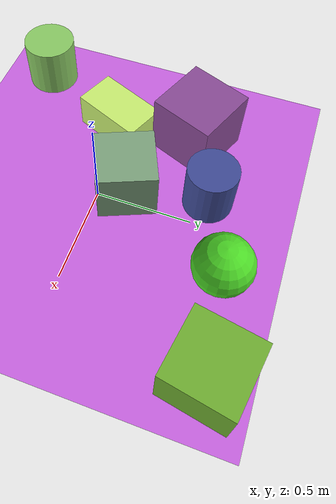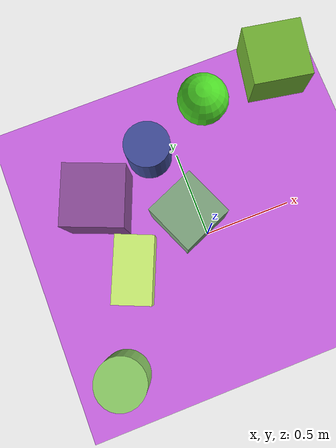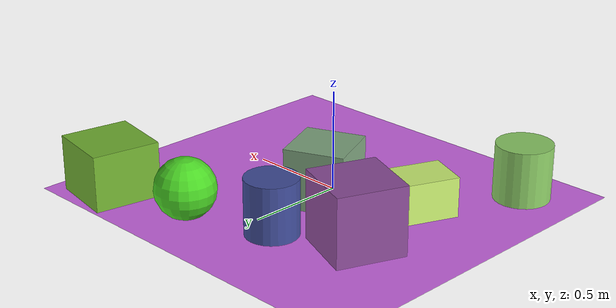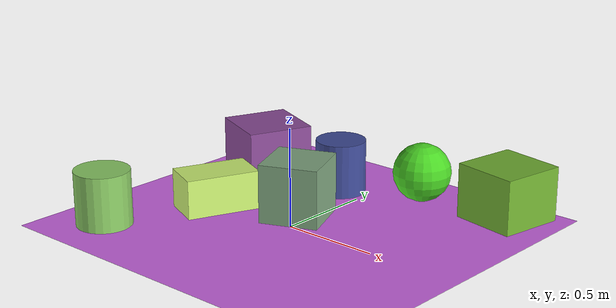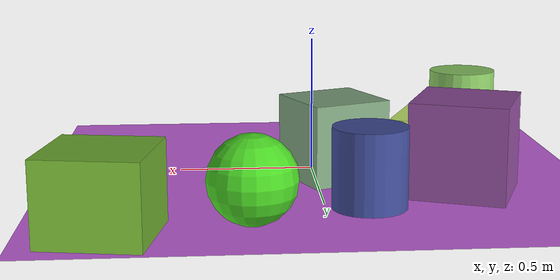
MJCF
<mujoco>
   <asset>
<texture type="skybox" builtin="gradient" rgb1="0.2 0.1 0.1" rgb2="0.8 0.2 0.1" width="500" height="500"/>
<texture name="checker_0" builtin="checker" rgb1="0.6 0.9 0.3" rgb2="0.3 0.5 0.1" width="500" height="500"/>
<texture name="checker_1" builtin="checker" rgb1="0.5 0.9 0.2" rgb2="0.6 0.7 0.6" width="500" height="500"/>
<texture name="gradient_2" builtin="gradient" rgb1="0.1 0.4 0.8" rgb2="0.4 0.2 0.4" width="500" height="500"/>
<texture name="gradient_3" builtin="gradient" rgb1="0.9 0.4 0.7" rgb2="0.2 0.2 0.5" width="500" height="500"/>
<texture name="checker_4" builtin="checker" rgb1="0.8 1.0 0.3" rgb2="0.8 0.9 0.6" width="500" height="500"/>
<texture name="gradient_5" builtin="gradient" rgb1="0.3 1.0 0.2" rgb2="0.3 0.7 0.1" width="500" height="500"/>
<texture name="gradient_6" builtin="gradient" rgb1="0.7 0.6 0.3" rgb2="0.3 0.7 0.7" width="500" height="500"/><material name="checker_0_mat" reflectance="0.24829653889676695" texrepeat="3 3" texture="checker_0" texuniform="false" />
<material name="checker_1_mat" reflectance="0.11094278182783102" texrepeat="3 3" texture="checker_1" texuniform="false" />
<material name="gradient_2_mat" reflectance="0.9461378294055933" texture="gradient_2" texuniform="true"/>
<material name="gradient_3_mat" reflectance="0.4436786777917475" texture="gradient_3" texuniform="true"/>
<material name="checker_4_mat" reflectance="0.3129957564059398" texrepeat="3 3" texture="checker_4" texuniform="false" />
<material name="gradient_5_mat" reflectance="0.5077560552499988" texture="gradient_5" texuniform="true"/>
<material name="gradient_6_mat" reflectance="0.4243950813234245" texture="gradient_6" texuniform="true"/>
   </asset>

   <worldbody>
     <geom type="plane" size="1 1 0.1" rgba="0.8 0.4 0.9 1" />
<light pos="-0.7613072948204314 -0.1992748269389597 2" dir="0 0 -1" cutoff="90" diffuse="1 1 1" specular="1 1 1"/>
<light pos="-0.8856819961981766 0.15059402732985583 2" dir="0 0 -1" cutoff="90" diffuse="1 1 1" specular="1 1 1"/>
<geom type="box" pos="0.72 0.79 0.14" size="0.17 0.17 0.14" material="checker_0_mat" euler="0 0 80" />
<geom type="cylinder" pos="-0.71 -0.57 0.14" size="0.14 0.14 0.14" material="checker_1_mat" euler="0 0 33" />
<geom type="cylinder" pos="-0.15 0.55 0.14" size="0.13 0.14 0.14" material="gradient_2_mat" euler="0 0 29" />
<geom type="box" pos="-0.51 0.38 0.17" size="0.17 0.17 0.17" material="gradient_3_mat" euler="0 0 68" />
<geom type="box" pos="-0.46 -0.05 0.1" size="0.19 0.11 0.1" material="checker_4_mat" euler="0 0 67" />
<geom type="sphere" pos="0.25 0.72 0.15" size="0.15 0.15 0.15" material="gradient_5_mat" euler="0 0 39" />
<geom type="box" pos="-0.07 0.13 0.15" size="0.15 0.15 0.15" material="gradient_6_mat" euler="0 0 23" /><camera euler="60 0 180" fovy="60" name="camera1" pos="-0.2 -1.5 1"></camera>   </worldbody>
   <visual>
      <headlight diffuse="0.7 0.7 0.7"/>
   </visual>
</mujoco>
